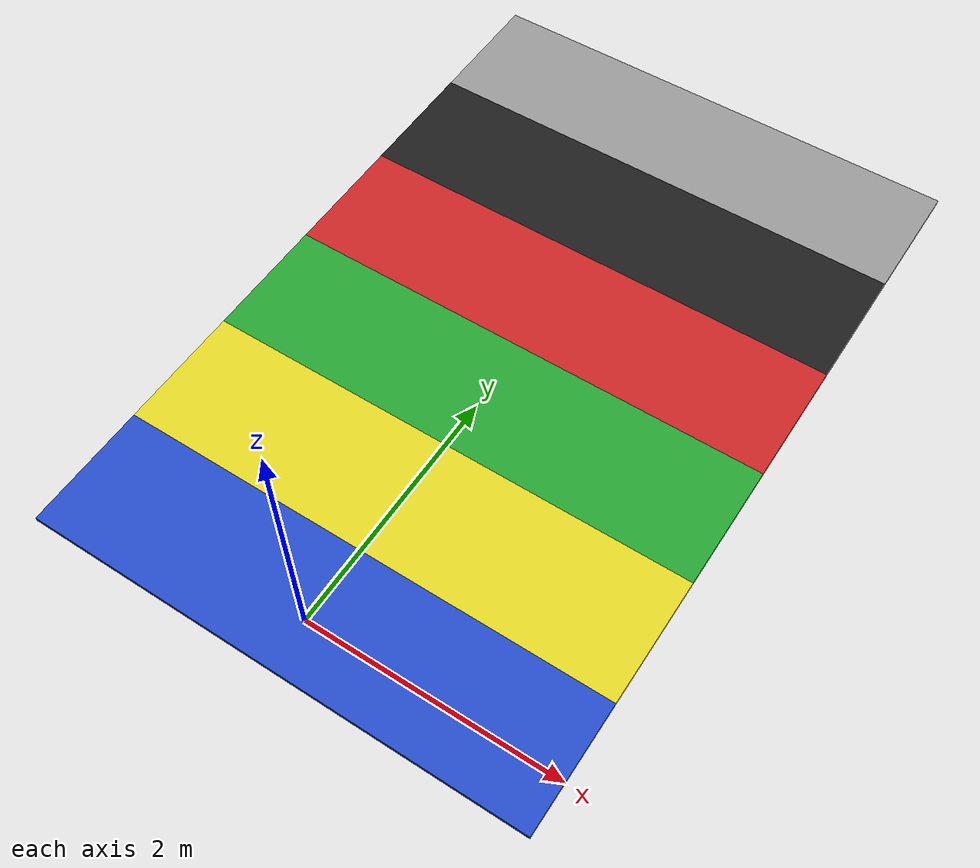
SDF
<sdf version='1.6'>
  <world name='default'>
    <physics name='default_physics' default='0' type='ode'>
     <max_contacts>20</max_contacts>
      <ode>
        <solver>
          <type>quick</type>
          <iters>200</iters>
        </solver>
      </ode>
    </physics>
    <include>
      <uri>model://sun</uri>
    </include>
    <model name='FLOOR'>
      <static>1</static>
<link name='field0'>
        <pose frame=''>0 0.1 0.01 0 -0 0</pose>
        <collision name='collision'>
          <geometry>
	     <box>
            	<size>4 1 0.03</size>
             </box>
          </geometry>
          <surface>
            <friction>
              <ode>
                <mu>100</mu>
                <mu2>50</mu2>
              </ode>
              <torsional>
                <ode/>
              </torsional>
            </friction>
            <contact>
              <collide_without_contact>0</collide_without_contact>
              <collide_without_contact_bitmask>1</collide_without_contact_bitmask>
              <collide_bitmask>1</collide_bitmask>
              <ode>
                <soft_cfm>0</soft_cfm>
                <soft_erp>0.2</soft_erp>
                <kp>5e+4</kp>
                <kd>1</kd>
                <max_vel>0.01</max_vel>
                <min_depth>0</min_depth>
              </ode>
            </contact>
            <bounce>
              <restitution_coefficient>0</restitution_coefficient>
              <threshold>1e+5</threshold>
            </bounce>
          </surface>
        </collision>
        <visual name='carpet'>
          <cast_shadows>0</cast_shadows>
          <geometry>
	     <box>
            	<size>4 1 0.03</size>
             </box>
          </geometry>
          <material>
            <script>
              <uri>file://media/materials/scripts/gazebo.material</uri>
              <name>Gazebo/Blue</name>
            </script>
          </material>
        </visual>
       </link>
<link name='field1'>
        <pose frame=''>0 1.1 0.01 0 -0 0</pose>
        <collision name='collision'>
          <geometry>
	     <box>
            	<size>4 1 0.03</size>
             </box>
          </geometry>
          <surface>
            <friction>
              <ode>
                <mu>100</mu>
                <mu2>50</mu2>
              </ode>
              <torsional>
                <ode/>
              </torsional>
            </friction>
            <contact>
              <collide_without_contact>0</collide_without_contact>
              <collide_without_contact_bitmask>1</collide_without_contact_bitmask>
              <collide_bitmask>1</collide_bitmask>
              <ode>
                <soft_cfm>0</soft_cfm>
                <soft_erp>0.2</soft_erp>
                <kp>3e+6</kp>
                <kd>1</kd>
                <max_vel>0.01</max_vel>
                <min_depth>0</min_depth>
              </ode>
            </contact>
            <bounce>
              <restitution_coefficient>0</restitution_coefficient>
              <threshold>1e+5</threshold>
            </bounce>
          </surface>
        </collision>
        <visual name='carpet'>
          <cast_shadows>0</cast_shadows>
          <geometry>
	     <box>
            	<size>4 1 0.03</size>
             </box>
          </geometry>
          <material>
            <script>
              <uri>file://media/materials/scripts/gazebo.material</uri>
              <name>Gazebo/Yellow</name>
            </script>
          </material>
        </visual>
       </link>
 <link name='field2'>
        <pose frame=''>0 2.1 0.01 0 -0 0</pose>
        <collision name='collision'>
          <geometry>
	     <box>
            	<size>4 1 0.03</size>
             </box>
          </geometry>
          <surface>
            <friction>
              <ode>
                <mu>1</mu>
                <mu2>0.1</mu2>
              </ode>
              <torsional>
                <ode/>
              </torsional>
            </friction>
            <contact>
              <collide_without_contact>0</collide_without_contact>
              <collide_without_contact_bitmask>1</collide_without_contact_bitmask>
              <collide_bitmask>1</collide_bitmask>
              <ode>
                <soft_cfm>0</soft_cfm>
                <soft_erp>0.2</soft_erp>
                <kp>3e+6</kp>
                <kd>1</kd>
                <max_vel>0.01</max_vel>
                <min_depth>0</min_depth>
              </ode>
            </contact>
            <bounce>
              <restitution_coefficient>0</restitution_coefficient>
              <threshold>1e+5</threshold>
            </bounce>
          </surface>
        </collision>
        <visual name='carpet'>
          <cast_shadows>0</cast_shadows>
          <geometry>
	     <box>
            	<size>4 1 0.03</size>
             </box>
          </geometry>
          <material>
            <script>
              <uri>file://media/materials/scripts/gazebo.material</uri>
              <name>Gazebo/Green</name>
            </script>
          </material>
        </visual>
       </link>
 <link name='field3'>
        <pose frame=''>0 3.1 0.01 0 -0 0</pose>
        <collision name='collision'>
          <geometry>
	     <box>
            	<size>4 1 0.03</size>
             </box>
          </geometry>
          <surface>
            <friction>
              <ode>
                <mu>100</mu>
                <mu2>50</mu2>
              </ode>
              <torsional>
                <ode/>
              </torsional>
            </friction>
            <contact>
              <collide_without_contact>0</collide_without_contact>
              <collide_without_contact_bitmask>1</collide_without_contact_bitmask>
              <collide_bitmask>1</collide_bitmask>
              <ode>
                <soft_cfm>0</soft_cfm>
                <soft_erp>0.2</soft_erp>
                <kp>1e+7</kp>
                <kd>1</kd>
                <max_vel>0.01</max_vel>
                <min_depth>0</min_depth>
              </ode>
            </contact>
            <bounce>
              <restitution_coefficient>0</restitution_coefficient>
              <threshold>1e+5</threshold>
            </bounce>
          </surface>
        </collision>
        <visual name='carpet'>
          <cast_shadows>0</cast_shadows>
          <geometry>
	     <box>
            	<size>4 1 0.03</size>
             </box>
          </geometry>
          <material>
            <script>
              <uri>file://media/materials/scripts/gazebo.material</uri>
              <name>Gazebo/Red</name>
            </script>
          </material>
        </visual>
       </link>
<link name='field4'>
        <pose frame=''>0 4.1 0.01 0 -0 0</pose>
        <collision name='collision'>
          <geometry>
	     <box>
            	<size>4 1 0.03</size>
             </box>
          </geometry>
          <surface>
            <friction>
              <ode>
                <mu>100</mu>
                <mu2>50</mu2>
              </ode>
              <torsional>
                <ode/>
              </torsional>
            </friction>
            <contact>
              <collide_without_contact>0</collide_without_contact>
              <collide_without_contact_bitmask>1</collide_without_contact_bitmask>
              <collide_bitmask>1</collide_bitmask>
              <ode>
                <soft_cfm>0</soft_cfm>
                <soft_erp>0.2</soft_erp>
                <kp>1e+13</kp>
                <kd>1</kd>
                <max_vel>0.01</max_vel>
                <min_depth>0</min_depth>
              </ode>
            </contact>
            <bounce>
              <restitution_coefficient>0</restitution_coefficient>
              <threshold>1e+5</threshold>
            </bounce>
          </surface>
        </collision>
        <visual name='carpet'>
          <cast_shadows>0</cast_shadows>
          <geometry>
	     <box>
            	<size>4 1 0.03</size>
             </box>
          </geometry>
          <material>
            <script>
              <uri>file://media/materials/scripts/gazebo.material</uri>
              <name>Gazebo/Black</name>
            </script>
          </material>
        </visual>
       </link>
<link name='field5'>
        <pose frame=''>0 5.1 0.01 0 -0 0</pose>
        <collision name='collision'>
          <geometry>
	     <box>
            	<size>4 1 0.03</size>
             </box>
          </geometry>
          <surface>
            <friction>
              <ode>
                <mu>100</mu>
                <mu2>50</mu2>
              </ode>
              <torsional>
                <ode/>
              </torsional>
            </friction>
            <contact>
              <collide_without_contact>0</collide_without_contact>
              <collide_without_contact_bitmask>1</collide_without_contact_bitmask>
              <collide_bitmask>1</collide_bitmask>
              <ode>
                <soft_cfm>0</soft_cfm>
                <soft_erp>0.2</soft_erp>
                <kp>1e+5</kp>
                <kd>1</kd>
                <max_vel>0.01</max_vel>
                <min_depth>0</min_depth>
              </ode>
            </contact>
            <bounce>
              <restitution_coefficient>0</restitution_coefficient>
              <threshold>1e+5</threshold>
            </bounce>
          </surface>
        </collision>
        <visual name='carpet'>
          <cast_shadows>0</cast_shadows>
          <geometry>
	     <box>
            	<size>4 1 0.03</size>
             </box>
          </geometry>
          <material>
            <script>
              <uri>file://media/materials/scripts/gazebo.material</uri>
              <name>Gazebo/Grey</name>
            </script>
          </material>
        </visual>
       </link>
     </model>
  </world>
</sdf>
